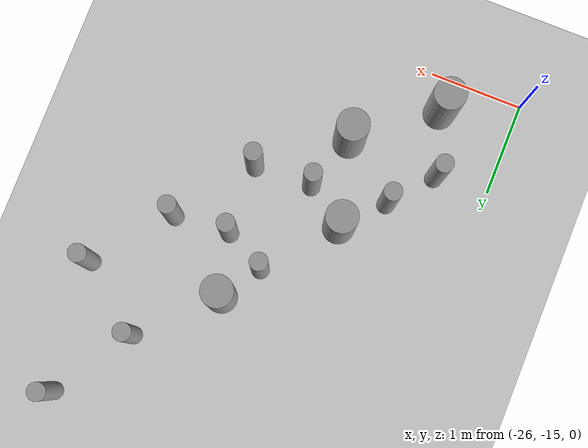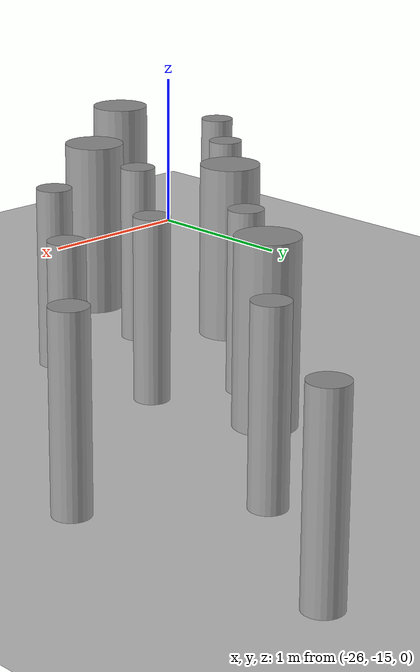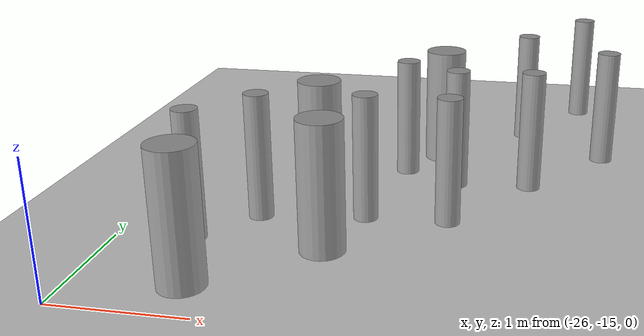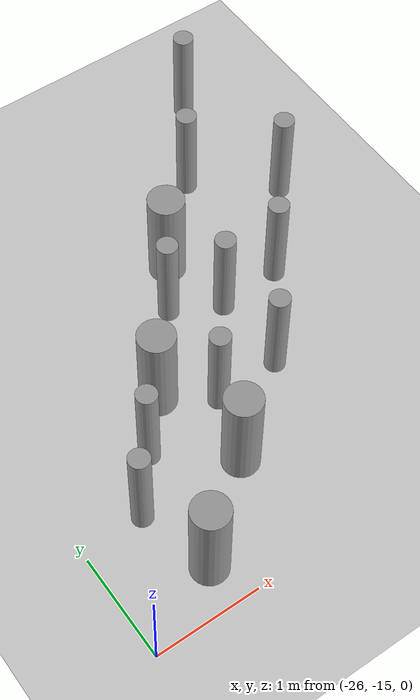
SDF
<sdf version="1.6">
 <world name="default">
  <model name="ground_plane">
   <static>1</static>
   <link name="link">
    <collision name="collision">
     <geometry><plane><normal>0 0 1</normal><size>100 100</size></plane></geometry>
     <surface><friction><ode><mu>100</mu><mu2>50</mu2></ode></friction></surface>
    </collision>
    <visual name="visual">
     <cast_shadows>0</cast_shadows>
     <geometry><plane><normal>0 0 1</normal><size>100 100</size></plane></geometry>
     <material>
      <script><uri>file://media/materials/scripts/gazebo.material</uri><name>Gazebo/Grey</name></script>
     </material>
    </visual>
   </link>
  </model>
  <model name="cyl_wall_clone_clone_1_clone_1_clone_clone_0_clone_1_clone">
   <link name="link_0">
    <pose>-2.73893 -0.366465 0 0 -0 0</pose>
    <inertial>
     <mass>0.0374993</mass>
     <inertia>
      <ixx>0.00321281</ixx>
      <ixy>0</ixy>
      <ixz>0</ixz>
      <iyy>0.00321281</iyy>
      <iyz>0</iyz>
      <izz>0.000175774</izz>
     </inertia>
    </inertial>
    <visual name="visual">
     <geometry><cylinder><radius>0.0968661</radius><length>1</length></cylinder></geometry>
     <material>
      <lighting>1</lighting>
      <script><uri>file://media/materials/scripts/gazebo.material</uri><name>Gazebo/Grey</name></script>
      <ambient>0.3 0.3 0.3 1</ambient>
      <diffuse>0.7 0.7 0.7 1</diffuse>
      <specular>0.01 0.01 0.01 1</specular>
      <emissive>0 0 0 1</emissive>
     </material>
    </visual>
    <collision name="collision">
     <geometry><cylinder><radius>0.096866</radius><length>1</length></cylinder></geometry>
     <surface>
      <friction>
       <ode><mu>1</mu><mu2>1</mu2><fdir1>0 0 0</fdir1><slip1>0</slip1><slip2>0</slip2></ode>
       <torsional>
        <coefficient>1</coefficient>
        <patch_radius>0</patch_radius>
        <surface_radius>0</surface_radius>
        <use_patch_radius>1</use_patch_radius>
        <ode><slip>0</slip></ode>
       </torsional>
      </friction>
      <bounce><restitution_coefficient>0</restitution_coefficient><threshold>1e+06</threshold></bounce>
      <contact>
       <collide_without_contact>0</collide_without_contact>
       <collide_without_contact_bitmask>1</collide_without_contact_bitmask>
       <collide_bitmask>1</collide_bitmask>
       <ode>
        <soft_cfm>0</soft_cfm>
        <soft_erp>0.2</soft_erp>
        <kp>1e+13</kp>
        <kd>1</kd>
        <max_vel>0.01</max_vel>
        <min_depth>0</min_depth>
       </ode>
       <bullet>
        <split_impulse>1</split_impulse>
        <split_impulse_penetration_threshold>-0.01</split_impulse_penetration_threshold>
        <soft_cfm>0</soft_cfm>
        <soft_erp>0.2</soft_erp>
        <kp>1e+13</kp>
        <kd>1</kd>
       </bullet>
      </contact>
     </surface>
    </collision>
   </link>
   <link name="link_0_clone">
    <pose>-1.73893 0.61877 0 0 -0 0</pose>
    <inertial>
     <mass>0.0374993</mass>
     <inertia>
      <ixx>0.00321281</ixx>
      <ixy>0</ixy>
      <ixz>0</ixz>
      <iyy>0.00321281</iyy>
      <iyz>0</iyz>
      <izz>0.000175774</izz>
     </inertia>
    </inertial>
    <visual name="visual">
     <geometry><cylinder><radius>0.0968661</radius><length>1</length></cylinder></geometry>
     <material>
      <lighting>1</lighting>
      <script><uri>file://media/materials/scripts/gazebo.material</uri><name>Gazebo/Grey</name></script>
      <ambient>0.3 0.3 0.3 1</ambient>
      <diffuse>0.7 0.7 0.7 1</diffuse>
      <specular>0.01 0.01 0.01 1</specular>
      <emissive>0 0 0 1</emissive>
      <shader type="pixel"/>
     </material>
    </visual>
    <collision name="collision">
     <geometry><cylinder><radius>0.096866</radius><length>1</length></cylinder></geometry>
     <surface>
      <friction>
       <ode><mu>1</mu><mu2>1</mu2><fdir1>0 0 0</fdir1><slip1>0</slip1><slip2>0</slip2></ode>
       <torsional>
        <coefficient>1</coefficient>
        <patch_radius>0</patch_radius>
        <surface_radius>0</surface_radius>
        <use_patch_radius>1</use_patch_radius>
        <ode><slip>0</slip></ode>
       </torsional>
      </friction>
      <bounce><restitution_coefficient>0</restitution_coefficient><threshold>1e+06</threshold></bounce>
      <contact>
       <collide_without_contact>0</collide_without_contact>
       <collide_without_contact_bitmask>1</collide_without_contact_bitmask>
       <collide_bitmask>1</collide_bitmask>
       <ode>
        <soft_cfm>0</soft_cfm>
        <soft_erp>0.2</soft_erp>
        <kp>1e+13</kp>
        <kd>1</kd>
        <max_vel>0.01</max_vel>
        <min_depth>0</min_depth>
       </ode>
       <bullet>
        <split_impulse>1</split_impulse>
        <split_impulse_penetration_threshold>-0.01</split_impulse_penetration_threshold>
        <soft_cfm>0</soft_cfm>
        <soft_erp>0.2</soft_erp>
        <kp>1e+13</kp>
        <kd>1</kd>
       </bullet>
      </contact>
     </surface>
    </collision>
   </link>
   <link name="link_0_clone_clone">
    <pose>-0.327073 0.143919 0 0 -0 0</pose>
    <inertial>
     <mass>0.0374993</mass>
     <inertia>
      <ixx>0.00321281</ixx>
      <ixy>0</ixy>
      <ixz>0</ixz>
      <iyy>0.00321281</iyy>
      <iyz>0</iyz>
      <izz>0.000175774</izz>
     </inertia>
    </inertial>
    <visual name="visual">
     <geometry><cylinder><radius>0.0968661</radius><length>1</length></cylinder></geometry>
     <material>
      <lighting>1</lighting>
      <script><uri>file://media/materials/scripts/gazebo.material</uri><name>Gazebo/Grey</name></script>
      <ambient>0.3 0.3 0.3 1</ambient>
      <diffuse>0.7 0.7 0.7 1</diffuse>
      <specular>0.01 0.01 0.01 1</specular>
      <emissive>0 0 0 1</emissive>
      <shader type="pixel"/>
     </material>
    </visual>
    <collision name="collision">
     <geometry><cylinder><radius>0.096866</radius><length>1</length></cylinder></geometry>
     <surface>
      <friction>
       <ode><mu>1</mu><mu2>1</mu2><fdir1>0 0 0</fdir1><slip1>0</slip1><slip2>0</slip2></ode>
       <torsional>
        <coefficient>1</coefficient>
        <patch_radius>0</patch_radius>
        <surface_radius>0</surface_radius>
        <use_patch_radius>1</use_patch_radius>
        <ode><slip>0</slip></ode>
       </torsional>
      </friction>
      <bounce><restitution_coefficient>0</restitution_coefficient><threshold>1e+06</threshold></bounce>
      <contact>
       <collide_without_contact>0</collide_without_contact>
       <collide_without_contact_bitmask>1</collide_without_contact_bitmask>
       <collide_bitmask>1</collide_bitmask>
       <ode>
        <soft_cfm>0</soft_cfm>
        <soft_erp>0.2</soft_erp>
        <kp>1e+13</kp>
        <kd>1</kd>
        <max_vel>0.01</max_vel>
        <min_depth>0</min_depth>
       </ode>
       <bullet>
        <split_impulse>1</split_impulse>
        <split_impulse_penetration_threshold>-0.01</split_impulse_penetration_threshold>
        <soft_cfm>0</soft_cfm>
        <soft_erp>0.2</soft_erp>
        <kp>1e+13</kp>
        <kd>1</kd>
       </bullet>
      </contact>
     </surface>
    </collision>
   </link>
   <link name="link_0_clone_clone_0">
    <pose>1.26107 -0.419359 0 0 -0 0</pose>
    <inertial>
     <mass>0.0374993</mass>
     <inertia>
      <ixx>0.00321281</ixx>
      <ixy>0</ixy>
      <ixz>0</ixz>
      <iyy>0.00321281</iyy>
      <iyz>0</iyz>
      <izz>0.000175774</izz>
     </inertia>
    </inertial>
    <visual name="visual">
     <geometry><cylinder><radius>0.0968661</radius><length>1</length></cylinder></geometry>
     <material>
      <lighting>1</lighting>
      <script><uri>file://media/materials/scripts/gazebo.material</uri><name>Gazebo/Grey</name></script>
      <ambient>0.3 0.3 0.3 1</ambient>
      <diffuse>0.7 0.7 0.7 1</diffuse>
      <specular>0.01 0.01 0.01 1</specular>
      <emissive>0 0 0 1</emissive>
      <shader type="pixel"/>
     </material>
    </visual>
    <collision name="collision">
     <geometry><cylinder><radius>0.096866</radius><length>1</length></cylinder></geometry>
     <surface>
      <friction>
       <ode><mu>1</mu><mu2>1</mu2><fdir1>0 0 0</fdir1><slip1>0</slip1><slip2>0</slip2></ode>
       <torsional>
        <coefficient>1</coefficient>
        <patch_radius>0</patch_radius>
        <surface_radius>0</surface_radius>
        <use_patch_radius>1</use_patch_radius>
        <ode><slip>0</slip></ode>
       </torsional>
      </friction>
      <bounce><restitution_coefficient>0</restitution_coefficient><threshold>1e+06</threshold></bounce>
      <contact>
       <collide_without_contact>0</collide_without_contact>
       <collide_without_contact_bitmask>1</collide_without_contact_bitmask>
       <collide_bitmask>1</collide_bitmask>
       <ode>
        <soft_cfm>0</soft_cfm>
        <soft_erp>0.2</soft_erp>
        <kp>1e+13</kp>
        <kd>1</kd>
        <max_vel>0.01</max_vel>
        <min_depth>0</min_depth>
       </ode>
       <bullet>
        <split_impulse>1</split_impulse>
        <split_impulse_penetration_threshold>-0.01</split_impulse_penetration_threshold>
        <soft_cfm>0</soft_cfm>
        <soft_erp>0.2</soft_erp>
        <kp>1e+13</kp>
        <kd>1</kd>
       </bullet>
      </contact>
     </surface>
    </collision>
   </link>
   <link name="link_0_clone_clone_1">
    <pose>-1.73893 -0.277168 0 0 -0 0</pose>
    <inertial>
     <mass>0.0374993</mass>
     <inertia>
      <ixx>0.00321281</ixx>
      <ixy>0</ixy>
      <ixz>0</ixz>
      <iyy>0.00321281</iyy>
      <iyz>0</iyz>
      <izz>0.000175774</izz>
     </inertia>
    </inertial>
    <visual name="visual">
     <geometry><cylinder><radius>0.0968661</radius><length>1</length></cylinder></geometry>
     <material>
      <lighting>1</lighting>
      <script><uri>file://media/materials/scripts/gazebo.material</uri><name>Gazebo/Grey</name></script>
      <ambient>0.3 0.3 0.3 1</ambient>
      <diffuse>0.7 0.7 0.7 1</diffuse>
      <specular>0.01 0.01 0.01 1</specular>
      <emissive>0 0 0 1</emissive>
      <shader type="pixel"/>
     </material>
    </visual>
    <collision name="collision">
     <geometry><cylinder><radius>0.096866</radius><length>1</length></cylinder></geometry>
     <surface>
      <friction>
       <ode><mu>1</mu><mu2>1</mu2><fdir1>0 0 0</fdir1><slip1>0</slip1><slip2>0</slip2></ode>
       <torsional>
        <coefficient>1</coefficient>
        <patch_radius>0</patch_radius>
        <surface_radius>0</surface_radius>
        <use_patch_radius>1</use_patch_radius>
        <ode><slip>0</slip></ode>
       </torsional>
      </friction>
      <bounce><restitution_coefficient>0</restitution_coefficient><threshold>1e+06</threshold></bounce>
      <contact>
       <collide_without_contact>0</collide_without_contact>
       <collide_without_contact_bitmask>1</collide_without_contact_bitmask>
       <collide_bitmask>1</collide_bitmask>
       <ode>
        <soft_cfm>0</soft_cfm>
        <soft_erp>0.2</soft_erp>
        <kp>1e+13</kp>
        <kd>1</kd>
        <max_vel>0.01</max_vel>
        <min_depth>0</min_depth>
       </ode>
       <bullet>
        <split_impulse>1</split_impulse>
        <split_impulse_penetration_threshold>-0.01</split_impulse_penetration_threshold>
        <soft_cfm>0</soft_cfm>
        <soft_erp>0.2</soft_erp>
        <kp>1e+13</kp>
        <kd>1</kd>
       </bullet>
      </contact>
     </surface>
    </collision>
   </link>
   <link name="link_0_clone_clone_2">
    <pose>-0.738934 0.593961 0 0 -0 0</pose>
    <inertial>
     <mass>0.0374993</mass>
     <inertia>
      <ixx>0.00321281</ixx>
      <ixy>0</ixy>
      <ixz>0</ixz>
      <iyy>0.00321281</iyy>
      <iyz>0</iyz>
      <izz>0.000175774</izz>
     </inertia>
    </inertial>
    <visual name="visual">
     <geometry><cylinder><radius>0.0968661</radius><length>1</length></cylinder></geometry>
     <material>
      <lighting>1</lighting>
      <script><uri>file://media/materials/scripts/gazebo.material</uri><name>Gazebo/Grey</name></script>
      <ambient>0.3 0.3 0.3 1</ambient>
      <diffuse>0.7 0.7 0.7 1</diffuse>
      <specular>0.01 0.01 0.01 1</specular>
      <emissive>0 0 0 1</emissive>
      <shader type="pixel"/>
     </material>
    </visual>
    <collision name="collision">
     <geometry><cylinder><radius>0.096866</radius><length>1</length></cylinder></geometry>
     <surface>
      <friction>
       <ode><mu>1</mu><mu2>1</mu2><fdir1>0 0 0</fdir1><slip1>0</slip1><slip2>0</slip2></ode>
       <torsional>
        <coefficient>1</coefficient>
        <patch_radius>0</patch_radius>
        <surface_radius>0</surface_radius>
        <use_patch_radius>1</use_patch_radius>
        <ode><slip>0</slip></ode>
       </torsional>
      </friction>
      <bounce><restitution_coefficient>0</restitution_coefficient><threshold>1e+06</threshold></bounce>
      <contact>
       <collide_without_contact>0</collide_without_contact>
       <collide_without_contact_bitmask>1</collide_without_contact_bitmask>
       <collide_bitmask>1</collide_bitmask>
       <ode>
        <soft_cfm>0</soft_cfm>
        <soft_erp>0.2</soft_erp>
        <kp>1e+13</kp>
        <kd>1</kd>
        <max_vel>0.01</max_vel>
        <min_depth>0</min_depth>
       </ode>
       <bullet>
        <split_impulse>1</split_impulse>
        <split_impulse_penetration_threshold>-0.01</split_impulse_penetration_threshold>
        <soft_cfm>0</soft_cfm>
        <soft_erp>0.2</soft_erp>
        <kp>1e+13</kp>
        <kd>1</kd>
       </bullet>
      </contact>
     </surface>
    </collision>
   </link>
   <link name="link_0_clone_clone_3">
    <pose>0.261066 0.624849 0 0 -0 0</pose>
    <inertial>
     <mass>0.0374993</mass>
     <inertia>
      <ixx>0.00321281</ixx>
      <ixy>0</ixy>
      <ixz>0</ixz>
      <iyy>0.00321281</iyy>
      <iyz>0</iyz>
      <izz>0.000175774</izz>
     </inertia>
    </inertial>
    <visual name="visual">
     <geometry><cylinder><radius>0.0968661</radius><length>1</length></cylinder></geometry>
     <material>
      <lighting>1</lighting>
      <script><uri>file://media/materials/scripts/gazebo.material</uri><name>Gazebo/Grey</name></script>
      <ambient>0.3 0.3 0.3 1</ambient>
      <diffuse>0.7 0.7 0.7 1</diffuse>
      <specular>0.01 0.01 0.01 1</specular>
      <emissive>0 0 0 1</emissive>
      <shader type="pixel"/>
     </material>
    </visual>
    <collision name="collision">
     <geometry><cylinder><radius>0.096866</radius><length>1</length></cylinder></geometry>
     <surface>
      <friction>
       <ode><mu>1</mu><mu2>1</mu2><fdir1>0 0 0</fdir1><slip1>0</slip1><slip2>0</slip2></ode>
       <torsional>
        <coefficient>1</coefficient>
        <patch_radius>0</patch_radius>
        <surface_radius>0</surface_radius>
        <use_patch_radius>1</use_patch_radius>
        <ode><slip>0</slip></ode>
       </torsional>
      </friction>
      <bounce><restitution_coefficient>0</restitution_coefficient><threshold>1e+06</threshold></bounce>
      <contact>
       <collide_without_contact>0</collide_without_contact>
       <collide_without_contact_bitmask>1</collide_without_contact_bitmask>
       <collide_bitmask>1</collide_bitmask>
       <ode>
        <soft_cfm>0</soft_cfm>
        <soft_erp>0.2</soft_erp>
        <kp>1e+13</kp>
        <kd>1</kd>
        <max_vel>0.01</max_vel>
        <min_depth>0</min_depth>
       </ode>
       <bullet>
        <split_impulse>1</split_impulse>
        <split_impulse_penetration_threshold>-0.01</split_impulse_penetration_threshold>
        <soft_cfm>0</soft_cfm>
        <soft_erp>0.2</soft_erp>
        <kp>1e+13</kp>
        <kd>1</kd>
       </bullet>
      </contact>
     </surface>
    </collision>
   </link>
   <link name="link_0_clone_clone_4">
    <pose>-0.239049 -0.353105 0 0 -0 0</pose>
    <inertial>
     <mass>0.0374993</mass>
     <inertia>
      <ixx>0.00321281</ixx>
      <ixy>0</ixy>
      <ixz>0</ixz>
      <iyy>0.00321281</iyy>
      <iyz>0</iyz>
      <izz>0.000175774</izz>
     </inertia>
    </inertial>
    <visual name="visual">
     <geometry><cylinder><radius>0.0968661</radius><length>1</length></cylinder></geometry>
     <material>
      <lighting>1</lighting>
      <script><uri>file://media/materials/scripts/gazebo.material</uri><name>Gazebo/Grey</name></script>
      <ambient>0.3 0.3 0.3 1</ambient>
      <diffuse>0.7 0.7 0.7 1</diffuse>
      <specular>0.01 0.01 0.01 1</specular>
      <emissive>0 0 0 1</emissive>
      <shader type="pixel"/>
     </material>
    </visual>
    <collision name="collision">
     <geometry><cylinder><radius>0.096866</radius><length>1</length></cylinder></geometry>
     <surface>
      <friction>
       <ode><mu>1</mu><mu2>1</mu2><fdir1>0 0 0</fdir1><slip1>0</slip1><slip2>0</slip2></ode>
       <torsional>
        <coefficient>1</coefficient>
        <patch_radius>0</patch_radius>
        <surface_radius>0</surface_radius>
        <use_patch_radius>1</use_patch_radius>
        <ode><slip>0</slip></ode>
       </torsional>
      </friction>
      <bounce><restitution_coefficient>0</restitution_coefficient><threshold>1e+06</threshold></bounce>
      <contact>
       <collide_without_contact>0</collide_without_contact>
       <collide_without_contact_bitmask>1</collide_without_contact_bitmask>
       <collide_bitmask>1</collide_bitmask>
       <ode>
        <soft_cfm>0</soft_cfm>
        <soft_erp>0.2</soft_erp>
        <kp>1e+13</kp>
        <kd>1</kd>
        <max_vel>0.01</max_vel>
        <min_depth>0</min_depth>
       </ode>
       <bullet>
        <split_impulse>1</split_impulse>
        <split_impulse_penetration_threshold>-0.01</split_impulse_penetration_threshold>
        <soft_cfm>0</soft_cfm>
        <soft_erp>0.2</soft_erp>
        <kp>1e+13</kp>
        <kd>1</kd>
       </bullet>
      </contact>
     </surface>
    </collision>
   </link>
   <link name="link_0_clone_clone_5">
    <pose>0.672792 0.143919 0 0 -0 0</pose>
    <inertial>
     <mass>0.0374993</mass>
     <inertia>
      <ixx>0.00321281</ixx>
      <ixy>0</ixy>
      <ixz>0</ixz>
      <iyy>0.00321281</iyy>
      <iyz>0</iyz>
      <izz>0.000175774</izz>
     </inertia>
    </inertial>
    <visual name="visual">
     <geometry><cylinder><radius>0.0968661</radius><length>1</length></cylinder></geometry>
     <material>
      <lighting>1</lighting>
      <script><uri>file://media/materials/scripts/gazebo.material</uri><name>Gazebo/Grey</name></script>
      <ambient>0.3 0.3 0.3 1</ambient>
      <diffuse>0.7 0.7 0.7 1</diffuse>
      <specular>0.01 0.01 0.01 1</specular>
      <emissive>0 0 0 1</emissive>
      <shader type="pixel"/>
     </material>
    </visual>
    <collision name="collision">
     <geometry><cylinder><radius>0.096866</radius><length>1</length></cylinder></geometry>
     <surface>
      <friction>
       <ode><mu>1</mu><mu2>1</mu2><fdir1>0 0 0</fdir1><slip1>0</slip1><slip2>0</slip2></ode>
       <torsional>
        <coefficient>1</coefficient>
        <patch_radius>0</patch_radius>
        <surface_radius>0</surface_radius>
        <use_patch_radius>1</use_patch_radius>
        <ode><slip>0</slip></ode>
       </torsional>
      </friction>
      <bounce><restitution_coefficient>0</restitution_coefficient><threshold>1e+06</threshold></bounce>
      <contact>
       <collide_without_contact>0</collide_without_contact>
       <collide_without_contact_bitmask>1</collide_without_contact_bitmask>
       <collide_bitmask>1</collide_bitmask>
       <ode>
        <soft_cfm>0</soft_cfm>
        <soft_erp>0.2</soft_erp>
        <kp>1e+13</kp>
        <kd>1</kd>
        <max_vel>0.01</max_vel>
        <min_depth>0</min_depth>
       </ode>
       <bullet>
        <split_impulse>1</split_impulse>
        <split_impulse_penetration_threshold>-0.01</split_impulse_penetration_threshold>
        <soft_cfm>0</soft_cfm>
        <soft_erp>0.2</soft_erp>
        <kp>1e+13</kp>
        <kd>1</kd>
       </bullet>
      </contact>
     </surface>
    </collision>
   </link>
   <link name="link_0_clone_clone_6">
    <pose>1.84596 -0.433423 0 0 -0 0</pose>
    <inertial>
     <mass>0.0374993</mass>
     <inertia>
      <ixx>0.00321281</ixx>
      <ixy>0</ixy>
      <ixz>0</ixz>
      <iyy>0.00321281</iyy>
      <iyz>0</iyz>
      <izz>0.000175774</izz>
     </inertia>
    </inertial>
    <visual name="visual">
     <geometry><cylinder><radius>0.0968661</radius><length>1</length></cylinder></geometry>
     <material>
      <lighting>1</lighting>
      <script><uri>file://media/materials/scripts/gazebo.material</uri><name>Gazebo/Grey</name></script>
      <ambient>0.3 0.3 0.3 1</ambient>
      <diffuse>0.7 0.7 0.7 1</diffuse>
      <specular>0.01 0.01 0.01 1</specular>
      <emissive>0 0 0 1</emissive>
      <shader type="pixel"/>
     </material>
    </visual>
    <collision name="collision">
     <geometry><cylinder><radius>0.096866</radius><length>1</length></cylinder></geometry>
     <surface>
      <friction>
       <ode><mu>1</mu><mu2>1</mu2><fdir1>0 0 0</fdir1><slip1>0</slip1><slip2>0</slip2></ode>
       <torsional>
        <coefficient>1</coefficient>
        <patch_radius>0</patch_radius>
        <surface_radius>0</surface_radius>
        <use_patch_radius>1</use_patch_radius>
        <ode><slip>0</slip></ode>
       </torsional>
      </friction>
      <bounce><restitution_coefficient>0</restitution_coefficient><threshold>1e+06</threshold></bounce>
      <contact>
       <collide_without_contact>0</collide_without_contact>
       <collide_without_contact_bitmask>1</collide_without_contact_bitmask>
       <collide_bitmask>1</collide_bitmask>
       <ode>
        <soft_cfm>0</soft_cfm>
        <soft_erp>0.2</soft_erp>
        <kp>1e+13</kp>
        <kd>1</kd>
        <max_vel>0.01</max_vel>
        <min_depth>0</min_depth>
       </ode>
       <bullet>
        <split_impulse>1</split_impulse>
        <split_impulse_penetration_threshold>-0.01</split_impulse_penetration_threshold>
        <soft_cfm>0</soft_cfm>
        <soft_erp>0.2</soft_erp>
        <kp>1e+13</kp>
        <kd>1</kd>
       </bullet>
      </contact>
     </surface>
    </collision>
   </link>
   <link name="link_1">
    <pose>-0.738934 -0.397931 0 0 -0 0</pose>
    <inertial>
     <mass>0.117398</mass>
     <inertia>
      <ixx>0.0106445</ixx>
      <ixy>0</ixy>
      <ixz>0</ixz>
      <iyy>0.0106445</iyy>
      <iyz>0</iyz>
      <izz>0.00172278</izz>
     </inertia>
    </inertial>
    <visual name="visual">
     <geometry><cylinder><radius>0.171317</radius><length>1</length></cylinder></geometry>
     <material>
      <lighting>1</lighting>
      <script><uri>file://media/materials/scripts/gazebo.material</uri><name>Gazebo/Grey</name></script>
      <ambient>0.3 0.3 0.3 1</ambient>
      <diffuse>0.7 0.7 0.7 1</diffuse>
      <specular>0.01 0.01 0.01 1</specular>
      <emissive>0 0 0 1</emissive>
     </material>
    </visual>
    <collision name="collision">
     <geometry><cylinder><radius>0.171317</radius><length>1</length></cylinder></geometry>
     <surface>
      <friction>
       <ode><mu>1</mu><mu2>1</mu2><fdir1>0 0 0</fdir1><slip1>0</slip1><slip2>0</slip2></ode>
       <torsional>
        <coefficient>1</coefficient>
        <patch_radius>0</patch_radius>
        <surface_radius>0</surface_radius>
        <use_patch_radius>1</use_patch_radius>
        <ode><slip>0</slip></ode>
       </torsional>
      </friction>
      <bounce><restitution_coefficient>0</restitution_coefficient><threshold>1e+06</threshold></bounce>
      <contact>
       <collide_without_contact>0</collide_without_contact>
       <collide_without_contact_bitmask>1</collide_without_contact_bitmask>
       <collide_bitmask>1</collide_bitmask>
       <ode>
        <soft_cfm>0</soft_cfm>
        <soft_erp>0.2</soft_erp>
        <kp>1e+13</kp>
        <kd>1</kd>
        <max_vel>0.01</max_vel>
        <min_depth>0</min_depth>
       </ode>
       <bullet>
        <split_impulse>1</split_impulse>
        <split_impulse_penetration_threshold>-0.01</split_impulse_penetration_threshold>
        <soft_cfm>0</soft_cfm>
        <soft_erp>0.2</soft_erp>
        <kp>1e+13</kp>
        <kd>1</kd>
       </bullet>
      </contact>
     </surface>
    </collision>
   </link>
   <link name="link_1_clone">
    <pose>0.697784 -0.380861 0 0 -0 0</pose>
    <inertial>
     <mass>0.117398</mass>
     <inertia>
      <ixx>0.0106445</ixx>
      <ixy>0</ixy>
      <ixz>0</ixz>
      <iyy>0.0106445</iyy>
      <iyz>0</iyz>
      <izz>0.00172278</izz>
     </inertia>
    </inertial>
    <visual name="visual">
     <geometry><cylinder><radius>0.171317</radius><length>1</length></cylinder></geometry>
     <material>
      <lighting>1</lighting>
      <script><uri>file://media/materials/scripts/gazebo.material</uri><name>Gazebo/Grey</name></script>
      <ambient>0.3 0.3 0.3 1</ambient>
      <diffuse>0.7 0.7 0.7 1</diffuse>
      <specular>0.01 0.01 0.01 1</specular>
      <emissive>0 0 0 1</emissive>
      <shader type="pixel"/>
     </material>
    </visual>
    <collision name="collision">
     <geometry><cylinder><radius>0.171317</radius><length>1</length></cylinder></geometry>
     <surface>
      <friction>
       <ode><mu>1</mu><mu2>1</mu2><fdir1>0 0 0</fdir1><slip1>0</slip1><slip2>0</slip2></ode>
       <torsional>
        <coefficient>1</coefficient>
        <patch_radius>0</patch_radius>
        <surface_radius>0</surface_radius>
        <use_patch_radius>1</use_patch_radius>
        <ode><slip>0</slip></ode>
       </torsional>
      </friction>
      <bounce><restitution_coefficient>0</restitution_coefficient><threshold>1e+06</threshold></bounce>
      <contact>
       <collide_without_contact>0</collide_without_contact>
       <collide_without_contact_bitmask>1</collide_without_contact_bitmask>
       <collide_bitmask>1</collide_bitmask>
       <ode>
        <soft_cfm>0</soft_cfm>
        <soft_erp>0.2</soft_erp>
        <kp>1e+13</kp>
        <kd>1</kd>
        <max_vel>0.01</max_vel>
        <min_depth>0</min_depth>
       </ode>
       <bullet>
        <split_impulse>1</split_impulse>
        <split_impulse_penetration_threshold>-0.01</split_impulse_penetration_threshold>
        <soft_cfm>0</soft_cfm>
        <soft_erp>0.2</soft_erp>
        <kp>1e+13</kp>
        <kd>1</kd>
       </bullet>
      </contact>
     </surface>
    </collision>
   </link>
   <link name="link_1_clone_0">
    <pose>1.26107 0.358974 0 0 -0 0</pose>
    <inertial>
     <mass>0.117398</mass>
     <inertia>
      <ixx>0.0106445</ixx>
      <ixy>0</ixy>
      <ixz>0</ixz>
      <iyy>0.0106445</iyy>
      <iyz>0</iyz>
      <izz>0.00172278</izz>
     </inertia>
    </inertial>
    <visual name="visual">
     <geometry><cylinder><radius>0.171317</radius><length>1</length></cylinder></geometry>
     <material>
      <lighting>1</lighting>
      <script><uri>file://media/materials/scripts/gazebo.material</uri><name>Gazebo/Grey</name></script>
      <ambient>0.3 0.3 0.3 1</ambient>
      <diffuse>0.7 0.7 0.7 1</diffuse>
      <specular>0.01 0.01 0.01 1</specular>
      <emissive>0 0 0 1</emissive>
      <shader type="pixel"/>
     </material>
    </visual>
    <collision name="collision">
     <geometry><cylinder><radius>0.171317</radius><length>1</length></cylinder></geometry>
     <surface>
      <friction>
       <ode><mu>1</mu><mu2>1</mu2><fdir1>0 0 0</fdir1><slip1>0</slip1><slip2>0</slip2></ode>
       <torsional>
        <coefficient>1</coefficient>
        <patch_radius>0</patch_radius>
        <surface_radius>0</surface_radius>
        <use_patch_radius>1</use_patch_radius>
        <ode><slip>0</slip></ode>
       </torsional>
      </friction>
      <bounce><restitution_coefficient>0</restitution_coefficient><threshold>1e+06</threshold></bounce>
      <contact>
       <collide_without_contact>0</collide_without_contact>
       <collide_without_contact_bitmask>1</collide_without_contact_bitmask>
       <collide_bitmask>1</collide_bitmask>
       <ode>
        <soft_cfm>0</soft_cfm>
        <soft_erp>0.2</soft_erp>
        <kp>1e+13</kp>
        <kd>1</kd>
        <max_vel>0.01</max_vel>
        <min_depth>0</min_depth>
       </ode>
       <bullet>
        <split_impulse>1</split_impulse>
        <split_impulse_penetration_threshold>-0.01</split_impulse_penetration_threshold>
        <soft_cfm>0</soft_cfm>
        <soft_erp>0.2</soft_erp>
        <kp>1e+13</kp>
        <kd>1</kd>
       </bullet>
      </contact>
     </surface>
    </collision>
   </link>
   <link name="link_1_clone_1">
    <pose>2.26107 0.143919 0 0 -0 0</pose>
    <inertial>
     <mass>0.117398</mass>
     <inertia>
      <ixx>0.0106445</ixx>
      <ixy>0</ixy>
      <ixz>0</ixz>
      <iyy>0.0106445</iyy>
      <iyz>0</iyz>
      <izz>0.00172278</izz>
     </inertia>
    </inertial>
    <visual name="visual">
     <geometry><cylinder><radius>0.171317</radius><length>1</length></cylinder></geometry>
     <material>
      <lighting>1</lighting>
      <script><uri>file://media/materials/scripts/gazebo.material</uri><name>Gazebo/Grey</name></script>
      <ambient>0.3 0.3 0.3 1</ambient>
      <diffuse>0.7 0.7 0.7 1</diffuse>
      <specular>0.01 0.01 0.01 1</specular>
      <emissive>0 0 0 1</emissive>
      <shader type="pixel"/>
     </material>
    </visual>
    <collision name="collision">
     <geometry><cylinder><radius>0.171317</radius><length>1</length></cylinder></geometry>
     <surface>
      <friction>
       <ode><mu>1</mu><mu2>1</mu2><fdir1>0 0 0</fdir1><slip1>0</slip1><slip2>0</slip2></ode>
       <torsional>
        <coefficient>1</coefficient>
        <patch_radius>0</patch_radius>
        <surface_radius>0</surface_radius>
        <use_patch_radius>1</use_patch_radius>
        <ode><slip>0</slip></ode>
       </torsional>
      </friction>
      <bounce><restitution_coefficient>0</restitution_coefficient><threshold>1e+06</threshold></bounce>
      <contact>
       <collide_without_contact>0</collide_without_contact>
       <collide_without_contact_bitmask>1</collide_without_contact_bitmask>
       <collide_bitmask>1</collide_bitmask>
       <ode>
        <soft_cfm>0</soft_cfm>
        <soft_erp>0.2</soft_erp>
        <kp>1e+13</kp>
        <kd>1</kd>
        <max_vel>0.01</max_vel>
        <min_depth>0</min_depth>
       </ode>
       <bullet>
        <split_impulse>1</split_impulse>
        <split_impulse_penetration_threshold>-0.01</split_impulse_penetration_threshold>
        <soft_cfm>0</soft_cfm>
        <soft_erp>0.2</soft_erp>
        <kp>1e+13</kp>
        <kd>1</kd>
       </bullet>
      </contact>
     </surface>
    </collision>
   </link>
   <static>1</static>
   <pose>-23.9253 -12.7553 0.5 0 0 -2.24061</pose>
  </model>
 </world>
</sdf>
